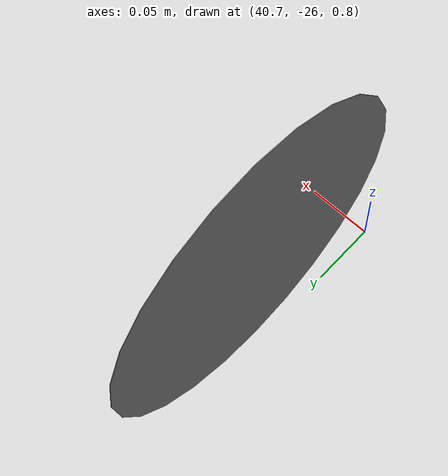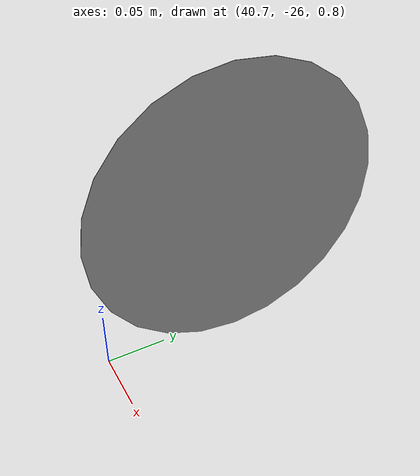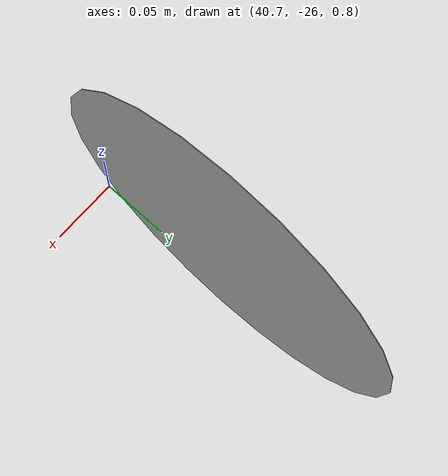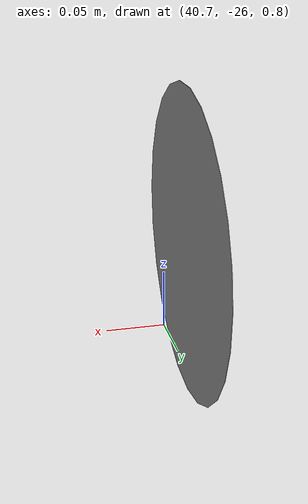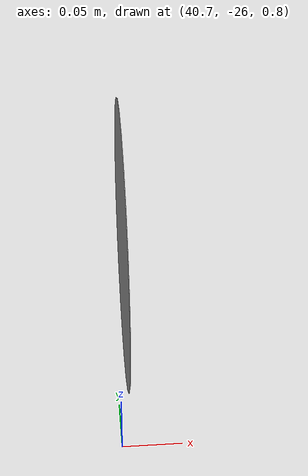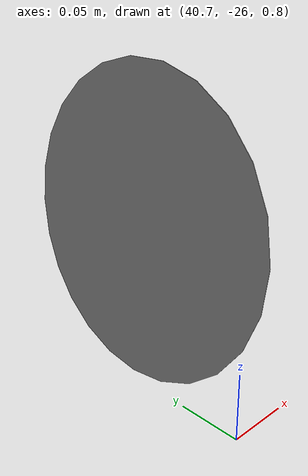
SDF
<sdf version="1.7">
 <world name="default">
  <model name="ground_plane">
   <static>1</static>
   <link name="link">
    <collision name="collision">
     <geometry><plane><normal>0 0 1</normal><size>100 100</size></plane></geometry>
     <surface>
      <contact><collide_bitmask>65535</collide_bitmask></contact>
      <friction><ode><mu>100</mu><mu2>50</mu2></ode></friction>
     </surface>
    </collision>
    <visual name="visual">
     <cast_shadows>0</cast_shadows>
     <geometry><plane><normal>0 0 1</normal><size>100 100</size></plane></geometry>
     <material>
      <script><uri>file://media/materials/scripts/gazebo.material</uri><name>Gazebo/DarkGrey</name></script>
     </material>
    </visual>
   </link>
  </model>
  <model name="sagadon_0">
   <link name="link_clone">
    <inertial>
     <mass>0.199386</mass>
     <inertia>
      <ixx>0.0166156</ixx>
      <ixy>0</ixy>
      <ixz>0</ixz>
      <iyy>0.0332311</iyy>
      <iyz>0</iyz>
      <izz>0.0166156</izz>
     </inertia>
    </inertial>
    <pose>-0.153624 1.8463 0.781019 0 -0 0</pose>
    <gravity>0</gravity>
    <visual name="visual">
     <geometry><box><size>0.25 0.001364 0.25</size></box></geometry>
     <material>
      <script>
       <uri>model://sagadon/materials/scripts/sagadon.material</uri>
       <uri>model://sagadon/materials/textures/sagadon.png</uri>
       <name>RepeatedTexture15</name>
      </script>
      <shader type="pixel"><normal_map>__default__</normal_map></shader>
      <ambient>0 0 0 1</ambient>
      <diffuse>0.7 0.7 0.7 1</diffuse>
      <specular>0.01 0.01 0.01 1</specular>
      <emissive>0 0 0 1</emissive>
      <lighting>0</lighting>
     </material>
     <transparency>1</transparency>
    </visual>
    <collision name="collision">
     <geometry><box><size>0.25 0.0001 0.25</size></box></geometry>
     <surface>
      <friction>
       <ode><mu>1</mu><mu2>1</mu2><fdir1>0 0 0</fdir1><slip1>0</slip1><slip2>0</slip2></ode>
       <torsional>
        <coefficient>1</coefficient>
        <patch_radius>0</patch_radius>
        <surface_radius>0</surface_radius>
        <use_patch_radius>1</use_patch_radius>
        <ode><slip>0</slip></ode>
       </torsional>
      </friction>
      <bounce><restitution_coefficient>0</restitution_coefficient><threshold>1e+06</threshold></bounce>
      <contact>
       <collide_without_contact>0</collide_without_contact>
       <collide_without_contact_bitmask>1</collide_without_contact_bitmask>
       <collide_bitmask>1</collide_bitmask>
       <ode>
        <soft_cfm>0</soft_cfm>
        <soft_erp>0.2</soft_erp>
        <kp>1e+13</kp>
        <kd>1</kd>
        <max_vel>0.01</max_vel>
        <min_depth>0</min_depth>
       </ode>
       <bullet>
        <split_impulse>1</split_impulse>
        <split_impulse_penetration_threshold>-0.01</split_impulse_penetration_threshold>
        <soft_cfm>0</soft_cfm>
        <soft_erp>0.2</soft_erp>
        <kp>1e+13</kp>
        <kd>1</kd>
       </bullet>
      </contact>
     </surface>
    </collision>
   </link>
   <static>1</static>
   <pose>34.2206 -28.1998 0.153138 0 -0 0</pose>
  </model>
  <model name="sagadonulmezz_0">
   <link name="link">
    <inertial>
     <mass>0.00065094</mass>
     <inertia>
      <ixx>3.39e-06</ixx>
      <ixy>0</ixy>
      <ixz>0</ixz>
      <iyy>6.78e-06</iyy>
      <iyz>0</iyz>
      <izz>3.39e-06</izz>
     </inertia>
    </inertial>
    <gravity>0</gravity>
    <visual name="visual">
     <geometry><box><size>0.25 0.000344 0.25</size></box></geometry>
     <material>
      <script>
       <uri>model://sagadonulmezz/materials/scripts/repeated.material</uri>
       <uri>model://sagadonulmezz/materials/textures/sagadonulmez.png</uri>
       <name>RepeatedTexture24</name>
      </script>
      <shader type="pixel"><normal_map>__default__</normal_map></shader>
      <ambient>0 0 0 1</ambient>
      <diffuse>0.7 0.7 0.7 1</diffuse>
      <specular>0.01 0.01 0.01 1</specular>
      <emissive>0.694 0.694 0.694 1</emissive>
      <lighting>0</lighting>
     </material>
     <transparency>1</transparency>
    </visual>
    <collision name="collision">
     <geometry><box><size>0.25 5.3e-05 0.25</size></box></geometry>
     <surface>
      <friction>
       <ode><mu>1</mu><mu2>1</mu2><fdir1>0 0 0</fdir1><slip1>0</slip1><slip2>0</slip2></ode>
       <torsional>
        <coefficient>1</coefficient>
        <patch_radius>0</patch_radius>
        <surface_radius>0</surface_radius>
        <use_patch_radius>1</use_patch_radius>
        <ode><slip>0</slip></ode>
       </torsional>
      </friction>
      <bounce><restitution_coefficient>0</restitution_coefficient><threshold>1e+06</threshold></bounce>
      <contact>
       <collide_without_contact>0</collide_without_contact>
       <collide_without_contact_bitmask>1</collide_without_contact_bitmask>
       <collide_bitmask>1</collide_bitmask>
       <ode>
        <soft_cfm>0</soft_cfm>
        <soft_erp>0.2</soft_erp>
        <kp>1e+13</kp>
        <kd>1</kd>
        <max_vel>0.01</max_vel>
        <min_depth>0</min_depth>
       </ode>
       <bullet>
        <split_impulse>1</split_impulse>
        <split_impulse_penetration_threshold>-0.01</split_impulse_penetration_threshold>
        <soft_cfm>0</soft_cfm>
        <soft_erp>0.2</soft_erp>
        <kp>1e+13</kp>
        <kd>1</kd>
       </bullet>
      </contact>
     </surface>
    </collision>
   </link>
   <static>1</static>
   <pose>40.698 -25.8879 0.925 0 -0 1.5708</pose>
  </model>
  <model name="circle_clone_clone_1_clone_0_clone_clone_2">
   <link name="link">
    <inertial>
     <mass>1</mass>
     <inertia><ixx>0.145833</ixx><ixy>0</ixy><ixz>0</ixz><iyy>0.145833</iyy><iyz>0</iyz><izz>0.125</izz></inertia>
    </inertial>
    <visual name="visual">
     <geometry><cylinder><radius>0.126069</radius><length>0.000448721</length></cylinder></geometry>
     <material>
      <script><name>Gazebo/Grey</name><uri>file://media/materials/scripts/gazebo.material</uri></script>
      <shader type="pixel"/>
     </material>
    </visual>
    <collision name="collision">
     <geometry><cylinder><radius>0.126069</radius><length>0.000449</length></cylinder></geometry>
     <surface>
      <friction>
       <ode><mu>1</mu><mu2>1</mu2><fdir1>0 0 0</fdir1><slip1>0</slip1><slip2>0</slip2></ode>
       <torsional>
        <coefficient>1</coefficient>
        <patch_radius>0</patch_radius>
        <surface_radius>0</surface_radius>
        <use_patch_radius>1</use_patch_radius>
        <ode><slip>0</slip></ode>
       </torsional>
      </friction>
      <bounce><restitution_coefficient>0</restitution_coefficient><threshold>1e+06</threshold></bounce>
      <contact>
       <collide_without_contact>0</collide_without_contact>
       <collide_without_contact_bitmask>1</collide_without_contact_bitmask>
       <collide_bitmask>1</collide_bitmask>
       <ode>
        <soft_cfm>0</soft_cfm>
        <soft_erp>0.2</soft_erp>
        <kp>1e+13</kp>
        <kd>1</kd>
        <max_vel>0.01</max_vel>
        <min_depth>0</min_depth>
       </ode>
       <bullet>
        <split_impulse>1</split_impulse>
        <split_impulse_penetration_threshold>-0.01</split_impulse_penetration_threshold>
        <soft_cfm>0</soft_cfm>
        <soft_erp>0.2</soft_erp>
        <kp>1e+13</kp>
        <kd>1</kd>
       </bullet>
      </contact>
     </surface>
    </collision>
   </link>
   <static>1</static>
   <pose>40.7076 -25.8861 0.924905 1.5708 -3e-06 1.5708</pose>
  </model>
 </world>
</sdf>
